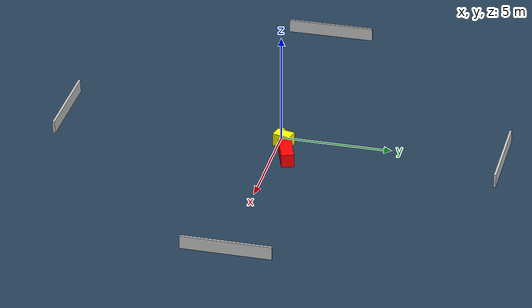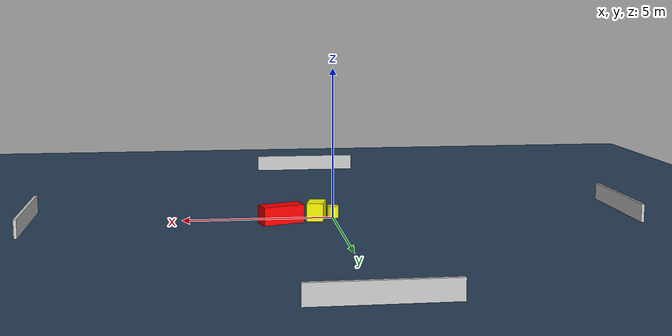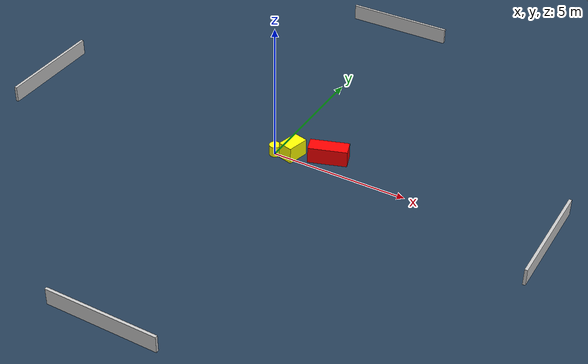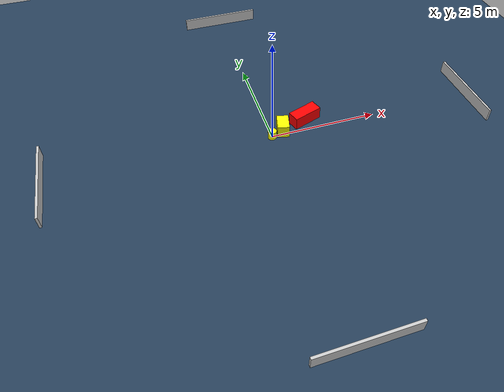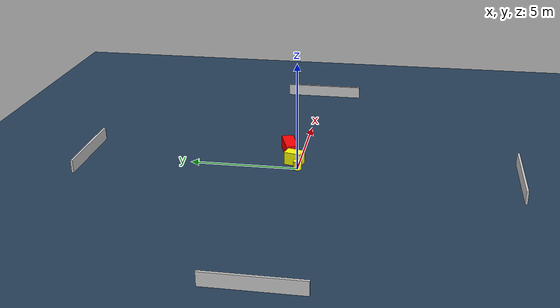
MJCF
<?xml version="1.0" ?>
<mujoco model="generated_environment">
  <option timestep="0.01" integrator="RK4" cone="elliptic"/>
  <default>
    <geom density="1"/>
  </default>
  <asset>
    <texture builtin="gradient" height="3072" name="skybox" rgb1="0.3 0.5 0.7" rgb2="0 0 0" type="skybox" width="512"/>
    <texture builtin="checker" height="300" name="groundplane" rgb1="0.2 0.3 0.4" rgb2="0.1 0.2 0.3" type="2d" width="300"/>
    <material name="groundplane" reflectance="0.2" texrepeat="5 5" texture="groundplane"/>
  </asset>
  <worldbody>
    <light dir="0 0 -1" directional="true" pos="0 0 1.5"/>
    <geom condim="3" friction="0.5 0.005 0.001" material="groundplane" name="floor" pos="0 0 0" size="0 0 0.05" type="plane"/>
    <body name="walls">
      <geom name="wall_1" condim="4" pos="-10.0 0.0 0.3" rgba="0.800000011920929 0.800000011920929 0.800000011920929 1.0" size="0.05 2.0 0.3" type="box"/>
      <geom name="wall_2" condim="4" pos="10.0 0.0 0.3" rgba="0.800000011920929 0.800000011920929 0.800000011920929 1.0" size="0.05 2.0 0.3" type="box"/>
      <geom name="wall_3" condim="4" pos="0.0 -10.0 0.3" rgba="0.800000011920929 0.800000011920929 0.800000011920929 1.0" size="2.0 0.05 0.3" type="box"/>
      <geom name="wall_4" condim="4" pos="0.0 10.0 0.3" rgba="0.800000011920929 0.800000011920929 0.800000011920929 1.0" size="2.0 0.05 0.3" type="box"/>
    </body>
    <body name="robot">
      <joint name="joint_x" type="slide" pos="0 0 0" axis="1 0 0"/>
      <joint name="joint_y" type="slide" pos="0 0 0" axis="0 1 0"/>
      <geom name="robot" type="cylinder" pos="0.0 0.0 0.2" size="0.2 0.2 0.0" mass="5.0" friction="1.0 0.005 0.0001" condim="4" rgba="1.0 1.0 0.0 1.0"/>
    </body>
    <body name="obstacle_1_movable">
      <geom name="obstacle_1_movable" condim="4" pos="0.584431688507569 0.23509671886343342 0.3" euler="0 0 346.30312134175824" friction="0.0 0.005 0.001" rgba="1.0 1.0 0.0 1.0" size="0.27006766471445487 0.40275530592040776 0.3" type="box" mass="0.1"/>
      <joint type="free"/>
    </body>
    <body name="obstacle_2_static">
      <geom name="obstacle_2_static" condim="4" pos="1.7877663979966436 0.6396469164741 0.3" euler="0 0 108.70802333975215" friction="0.0 0.005 0.001" rgba="1.0 0.0 0.0 1.0" size="0.28433909442331207 0.6969758343834971 0.3" type="box"/>
    </body>
  </worldbody>
  <actuator>
    <motor name="actuator_x" joint="joint_x" gear="1" ctrlrange="-1 1"/>
    <motor name="actuator_y" joint="joint_y" gear="1" ctrlrange="-1 1"/>
  </actuator>
</mujoco>
